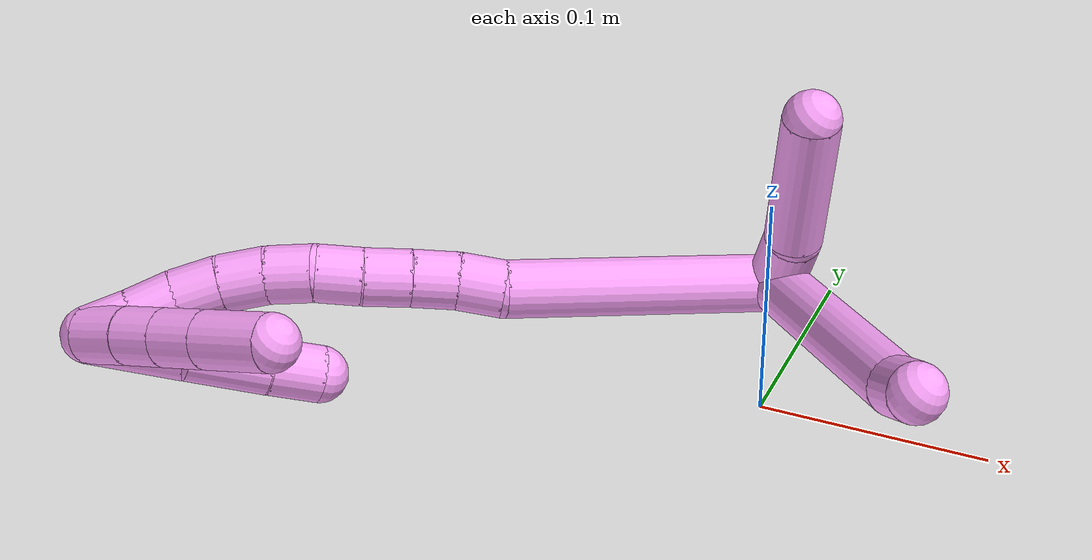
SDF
<sdf version="1.7">
 <world name="default">
  <model name="4">
   <static>0</static>
   <link name="4">
    <collision name="collision-cylinder-e_1_2_8">
     <pose>0.022906 -0.046785 0.037689 0.892658 0.364257 0.175809</pose>
     <geometry><cylinder><radius>0.0125</radius><length>0.128591</length></cylinder></geometry>
     <surface>
      <friction><ode><mu>1.16</mu><mu2>1.16</mu2><slip1>0</slip1><slip2>0</slip2></ode></friction>
      <contact><ode><kp>1e+06</kp><kd>1</kd><max_vel>0</max_vel><min_depth>0.001</min_depth></ode></contact>
     </surface>
    </collision>
    <visual name="visual-cylinder-e_1_2_8">
     <pose>0.022906 -0.046785 0.037689 0.892658 0.364257 0.175809</pose>
     <geometry><cylinder><radius>0.0125</radius><length>0.128591</length></cylinder></geometry>
     <material><ambient>1 0.65098 0.996078 1</ambient></material>
    </visual>
    <collision name="collision-cylinder-e_2_8_6">
     <pose>0.047472 -0.100773 0.08312 0.749406 0.155744 0.061357</pose>
     <geometry><cylinder><radius>0.0125</radius><length>0.021409</length></cylinder></geometry>
     <surface>
      <friction><ode><mu>1.16</mu><mu2>1.16</mu2><slip1>0</slip1><slip2>0</slip2></ode></friction>
      <contact><ode><kp>1e+06</kp><kd>1</kd><max_vel>0</max_vel><min_depth>0.001</min_depth></ode></contact>
     </surface>
    </collision>
    <visual name="visual-cylinder-e_2_8_6">
     <pose>0.047472 -0.100773 0.08312 0.749406 0.155744 0.061357</pose>
     <geometry><cylinder><radius>0.0125</radius><length>0.021409</length></cylinder></geometry>
     <material><ambient>1 0.65098 0.996078 1</ambient></material>
    </visual>
    <collision name="collision-cylinder-e_1_2_9">
     <pose>-0.005204 -0.004844 0.016324 0.288472 -0.296605 -0.043392</pose>
     <geometry><cylinder><radius>0.0125</radius><length>0.035611</length></cylinder></geometry>
     <surface>
      <friction><ode><mu>1.16</mu><mu2>1.16</mu2><slip1>0</slip1><slip2>0</slip2></ode></friction>
      <contact><ode><kp>1e+06</kp><kd>1</kd><max_vel>0</max_vel><min_depth>0.001</min_depth></ode></contact>
     </surface>
    </collision>
    <visual name="visual-cylinder-e_1_2_9">
     <pose>-0.005204 -0.004844 0.016324 0.288472 -0.296605 -0.043392</pose>
     <geometry><cylinder><radius>0.0125</radius><length>0.035611</length></cylinder></geometry>
     <material><ambient>1 0.65098 0.996078 1</ambient></material>
    </visual>
    <collision name="collision-cylinder-e_2_9_5">
     <pose>-0.025876 -0.012323 0.060761 0.09344 -0.501176 -0.023934</pose>
     <geometry><cylinder><radius>0.0125</radius><length>0.064389</length></cylinder></geometry>
     <surface>
      <friction><ode><mu>1.16</mu><mu2>1.16</mu2><slip1>0</slip1><slip2>0</slip2></ode></friction>
      <contact><ode><kp>1e+06</kp><kd>1</kd><max_vel>0</max_vel><min_depth>0.001</min_depth></ode></contact>
     </surface>
    </collision>
    <visual name="visual-cylinder-e_2_9_5">
     <pose>-0.025876 -0.012323 0.060761 0.09344 -0.501176 -0.023934</pose>
     <geometry><cylinder><radius>0.0125</radius><length>0.064389</length></cylinder></geometry>
     <material><ambient>1 0.65098 0.996078 1</ambient></material>
    </visual>
    <collision name="collision-cylinder-e_1_2_10">
     <pose>-0.044376 -0.032444 -0.023184 2.19125 -0.838758 -1.42805</pose>
     <geometry><cylinder><radius>0.0125</radius><length>0.11932</length></cylinder></geometry>
     <surface>
      <friction><ode><mu>1.16</mu><mu2>1.16</mu2><slip1>0</slip1><slip2>0</slip2></ode></friction>
      <contact><ode><kp>1e+06</kp><kd>1</kd><max_vel>0</max_vel><min_depth>0.001</min_depth></ode></contact>
     </surface>
    </collision>
    <visual name="visual-cylinder-e_1_2_10">
     <pose>-0.044376 -0.032444 -0.023184 2.19125 -0.838758 -1.42805</pose>
     <geometry><cylinder><radius>0.0125</radius><length>0.11932</length></cylinder></geometry>
     <material><ambient>1 0.65098 0.996078 1</ambient></material>
    </visual>
    <collision name="collision-cylinder-e_2_10_11">
     <pose>-0.097457 -0.068246 -0.050169 2.41777 -1.04325 -1.97661</pose>
     <geometry><cylinder><radius>0.0125</radius><length>0.020151</length></cylinder></geometry>
     <surface>
      <friction><ode><mu>1.16</mu><mu2>1.16</mu2><slip1>0</slip1><slip2>0</slip2></ode></friction>
      <contact><ode><kp>1e+06</kp><kd>1</kd><max_vel>0</max_vel><min_depth>0.001</min_depth></ode></contact>
     </surface>
    </collision>
    <visual name="visual-cylinder-e_2_10_11">
     <pose>-0.097457 -0.068246 -0.050169 2.41777 -1.04325 -1.97661</pose>
     <geometry><cylinder><radius>0.0125</radius><length>0.020151</length></cylinder></geometry>
     <material><ambient>1 0.65098 0.996078 1</ambient></material>
    </visual>
    <collision name="collision-cylinder-e_3_11_12">
     <pose>-0.114141 -0.076309 -0.057753 2.24825 -0.923037 -1.60846</pose>
     <geometry><cylinder><radius>0.0125</radius><length>0.020009</length></cylinder></geometry>
     <surface>
      <friction><ode><mu>1.16</mu><mu2>1.16</mu2><slip1>0</slip1><slip2>0</slip2></ode></friction>
      <contact><ode><kp>1e+06</kp><kd>1</kd><max_vel>0</max_vel><min_depth>0.001</min_depth></ode></contact>
     </surface>
    </collision>
    <visual name="visual-cylinder-e_3_11_12">
     <pose>-0.114141 -0.076309 -0.057753 2.24825 -0.923037 -1.60846</pose>
     <geometry><cylinder><radius>0.0125</radius><length>0.020009</length></cylinder></geometry>
     <material><ambient>1 0.65098 0.996078 1</ambient></material>
    </visual>
    <collision name="collision-cylinder-e_4_12_13">
     <pose>-0.130096 -0.085849 -0.065724 2.28431 -0.894886 -1.61973</pose>
     <geometry><cylinder><radius>0.0125</radius><length>0.020449</length></cylinder></geometry>
     <surface>
      <friction><ode><mu>1.16</mu><mu2>1.16</mu2><slip1>0</slip1><slip2>0</slip2></ode></friction>
      <contact><ode><kp>1e+06</kp><kd>1</kd><max_vel>0</max_vel><min_depth>0.001</min_depth></ode></contact>
     </surface>
    </collision>
    <visual name="visual-cylinder-e_4_12_13">
     <pose>-0.130096 -0.085849 -0.065724 2.28431 -0.894886 -1.61973</pose>
     <geometry><cylinder><radius>0.0125</radius><length>0.020449</length></cylinder></geometry>
     <material><ambient>1 0.65098 0.996078 1</ambient></material>
    </visual>
    <collision name="collision-cylinder-e_5_13_14">
     <pose>-0.146197 -0.09478 -0.074093 2.36686 -0.946492 -1.79609</pose>
     <geometry><cylinder><radius>0.0125</radius><length>0.020028</length></cylinder></geometry>
     <surface>
      <friction><ode><mu>1.16</mu><mu2>1.16</mu2><slip1>0</slip1><slip2>0</slip2></ode></friction>
      <contact><ode><kp>1e+06</kp><kd>1</kd><max_vel>0</max_vel><min_depth>0.001</min_depth></ode></contact>
     </surface>
    </collision>
    <visual name="visual-cylinder-e_5_13_14">
     <pose>-0.146197 -0.09478 -0.074093 2.36686 -0.946492 -1.79609</pose>
     <geometry><cylinder><radius>0.0125</radius><length>0.020028</length></cylinder></geometry>
     <material><ambient>1 0.65098 0.996078 1</ambient></material>
    </visual>
    <collision name="collision-cylinder-e_6_14_15">
     <pose>-0.161548 -0.102219 -0.084337 2.63732 -0.806807 -2.05547</pose>
     <geometry><cylinder><radius>0.0125</radius><length>0.020013</length></cylinder></geometry>
     <surface>
      <friction><ode><mu>1.16</mu><mu2>1.16</mu2><slip1>0</slip1><slip2>0</slip2></ode></friction>
      <contact><ode><kp>1e+06</kp><kd>1</kd><max_vel>0</max_vel><min_depth>0.001</min_depth></ode></contact>
     </surface>
    </collision>
    <visual name="visual-cylinder-e_6_14_15">
     <pose>-0.161548 -0.102219 -0.084337 2.63732 -0.806807 -2.05547</pose>
     <geometry><cylinder><radius>0.0125</radius><length>0.020013</length></cylinder></geometry>
     <material><ambient>1 0.65098 0.996078 1</ambient></material>
    </visual>
    <collision name="collision-cylinder-e_7_15_16">
     <pose>-0.175009 -0.109935 -0.096889 2.54895 -0.672757 -1.70603</pose>
     <geometry><cylinder><radius>0.0125</radius><length>0.020013</length></cylinder></geometry>
     <surface>
      <friction><ode><mu>1.16</mu><mu2>1.16</mu2><slip1>0</slip1><slip2>0</slip2></ode></friction>
      <contact><ode><kp>1e+06</kp><kd>1</kd><max_vel>0</max_vel><min_depth>0.001</min_depth></ode></contact>
     </surface>
    </collision>
    <visual name="visual-cylinder-e_7_15_16">
     <pose>-0.175009 -0.109935 -0.096889 2.54895 -0.672757 -1.70603</pose>
     <geometry><cylinder><radius>0.0125</radius><length>0.020013</length></cylinder></geometry>
     <material><ambient>1 0.65098 0.996078 1</ambient></material>
    </visual>
    <collision name="collision-cylinder-e_8_16_17">
     <pose>-0.186491 -0.119408 -0.110205 2.49963 -0.551898 -1.41096</pose>
     <geometry><cylinder><radius>0.0125</radius><length>0.020012</length></cylinder></geometry>
     <surface>
      <friction><ode><mu>1.16</mu><mu2>1.16</mu2><slip1>0</slip1><slip2>0</slip2></ode></friction>
      <contact><ode><kp>1e+06</kp><kd>1</kd><max_vel>0</max_vel><min_depth>0.001</min_depth></ode></contact>
     </surface>
    </collision>
    <visual name="visual-cylinder-e_8_16_17">
     <pose>-0.186491 -0.119408 -0.110205 2.49963 -0.551898 -1.41096</pose>
     <geometry><cylinder><radius>0.0125</radius><length>0.020012</length></cylinder></geometry>
     <material><ambient>1 0.65098 0.996078 1</ambient></material>
    </visual>
    <collision name="collision-cylinder-e_9_17_18">
     <pose>-0.19604 -0.130785 -0.123518 2.37296 -0.444808 -1.01971</pose>
     <geometry><cylinder><radius>0.0125</radius><length>0.02</length></cylinder></geometry>
     <surface>
      <friction><ode><mu>1.16</mu><mu2>1.16</mu2><slip1>0</slip1><slip2>0</slip2></ode></friction>
      <contact><ode><kp>1e+06</kp><kd>1</kd><max_vel>0</max_vel><min_depth>0.001</min_depth></ode></contact>
     </surface>
    </collision>
    <visual name="visual-cylinder-e_9_17_18">
     <pose>-0.19604 -0.130785 -0.123518 2.37296 -0.444808 -1.01971</pose>
     <geometry><cylinder><radius>0.0125</radius><length>0.02</length></cylinder></geometry>
     <material><ambient>1 0.65098 0.996078 1</ambient></material>
    </visual>
    <collision name="collision-cylinder-e_10_18_1">
     <pose>-0.205104 -0.143506 -0.135994 2.31929 -0.496133 -1.05256</pose>
     <geometry><cylinder><radius>0.0125</radius><length>0.020005</length></cylinder></geometry>
     <surface>
      <friction><ode><mu>1.16</mu><mu2>1.16</mu2><slip1>0</slip1><slip2>0</slip2></ode></friction>
      <contact><ode><kp>1e+06</kp><kd>1</kd><max_vel>0</max_vel><min_depth>0.001</min_depth></ode></contact>
     </surface>
    </collision>
    <visual name="visual-cylinder-e_10_18_1">
     <pose>-0.205104 -0.143506 -0.135994 2.31929 -0.496133 -1.05256</pose>
     <geometry><cylinder><radius>0.0125</radius><length>0.020005</length></cylinder></geometry>
     <material><ambient>1 0.65098 0.996078 1</ambient></material>
    </visual>
    <collision name="collision-cylinder-e_1_1_19">
     <pose>-0.191766 -0.143454 -0.133613 -0.660239 1.04127 -0.38802</pose>
     <geometry><cylinder><radius>0.0125</radius><length>0.041944</length></cylinder></geometry>
     <surface>
      <friction><ode><mu>1.16</mu><mu2>1.16</mu2><slip1>0</slip1><slip2>0</slip2></ode></friction>
      <contact><ode><kp>1e+06</kp><kd>1</kd><max_vel>0</max_vel><min_depth>0.001</min_depth></ode></contact>
     </surface>
    </collision>
    <visual name="visual-cylinder-e_1_1_19">
     <pose>-0.191766 -0.143454 -0.133613 -0.660239 1.04127 -0.38802</pose>
     <geometry><cylinder><radius>0.0125</radius><length>0.041944</length></cylinder></geometry>
     <material><ambient>1 0.65098 0.996078 1</ambient></material>
    </visual>
    <collision name="collision-cylinder-e_2_19_20">
     <pose>-0.15856 -0.12834 -0.121713 -1.18175 1.01832 -0.716652</pose>
     <geometry><cylinder><radius>0.0125</radius><length>0.035491</length></cylinder></geometry>
     <surface>
      <friction><ode><mu>1.16</mu><mu2>1.16</mu2><slip1>0</slip1><slip2>0</slip2></ode></friction>
      <contact><ode><kp>1e+06</kp><kd>1</kd><max_vel>0</max_vel><min_depth>0.001</min_depth></ode></contact>
     </surface>
    </collision>
    <visual name="visual-cylinder-e_2_19_20">
     <pose>-0.15856 -0.12834 -0.121713 -1.18175 1.01832 -0.716652</pose>
     <geometry><cylinder><radius>0.0125</radius><length>0.035491</length></cylinder></geometry>
     <material><ambient>1 0.65098 0.996078 1</ambient></material>
    </visual>
    <collision name="collision-cylinder-e_3_20_4">
     <pose>-0.134077 -0.113747 -0.116276 -1.26222 0.98133 -0.744467</pose>
     <geometry><cylinder><radius>0.0125</radius><length>0.022565</length></cylinder></geometry>
     <surface>
      <friction><ode><mu>1.16</mu><mu2>1.16</mu2><slip1>0</slip1><slip2>0</slip2></ode></friction>
      <contact><ode><kp>1e+06</kp><kd>1</kd><max_vel>0</max_vel><min_depth>0.001</min_depth></ode></contact>
     </surface>
    </collision>
    <visual name="visual-cylinder-e_3_20_4">
     <pose>-0.134077 -0.113747 -0.116276 -1.26222 0.98133 -0.744467</pose>
     <geometry><cylinder><radius>0.0125</radius><length>0.022565</length></cylinder></geometry>
     <material><ambient>1 0.65098 0.996078 1</ambient></material>
    </visual>
    <collision name="collision-cylinder-e_1_1_21">
     <pose>-0.203208 -0.151207 -0.13279 0.135851 0.6225 0.043765</pose>
     <geometry><cylinder><radius>0.0125</radius><length>0.022834</length></cylinder></geometry>
     <surface>
      <friction><ode><mu>1.16</mu><mu2>1.16</mu2><slip1>0</slip1><slip2>0</slip2></ode></friction>
      <contact><ode><kp>1e+06</kp><kd>1</kd><max_vel>0</max_vel><min_depth>0.001</min_depth></ode></contact>
     </surface>
    </collision>
    <visual name="visual-cylinder-e_1_1_21">
     <pose>-0.203208 -0.151207 -0.13279 0.135851 0.6225 0.043765</pose>
     <geometry><cylinder><radius>0.0125</radius><length>0.022834</length></cylinder></geometry>
     <material><ambient>1 0.65098 0.996078 1</ambient></material>
    </visual>
    <collision name="collision-cylinder-e_2_21_22">
     <pose>-0.190205 -0.153439 -0.115468 0.119342 0.659235 0.040869</pose>
     <geometry><cylinder><radius>0.0125</radius><length>0.020723</length></cylinder></geometry>
     <surface>
      <friction><ode><mu>1.16</mu><mu2>1.16</mu2><slip1>0</slip1><slip2>0</slip2></ode></friction>
      <contact><ode><kp>1e+06</kp><kd>1</kd><max_vel>0</max_vel><min_depth>0.001</min_depth></ode></contact>
     </surface>
    </collision>
    <visual name="visual-cylinder-e_2_21_22">
     <pose>-0.190205 -0.153439 -0.115468 0.119342 0.659235 0.040869</pose>
     <geometry><cylinder><radius>0.0125</radius><length>0.020723</length></cylinder></geometry>
     <material><ambient>1 0.65098 0.996078 1</ambient></material>
    </visual>
    <collision name="collision-cylinder-e_3_22_23">
     <pose>-0.177086 -0.155539 -0.09853 0.127126 0.651693 0.043006</pose>
     <geometry><cylinder><radius>0.0125</radius><length>0.022333</length></cylinder></geometry>
     <surface>
      <friction><ode><mu>1.16</mu><mu2>1.16</mu2><slip1>0</slip1><slip2>0</slip2></ode></friction>
      <contact><ode><kp>1e+06</kp><kd>1</kd><max_vel>0</max_vel><min_depth>0.001</min_depth></ode></contact>
     </surface>
    </collision>
    <visual name="visual-cylinder-e_3_22_23">
     <pose>-0.177086 -0.155539 -0.09853 0.127126 0.651693 0.043006</pose>
     <geometry><cylinder><radius>0.0125</radius><length>0.022333</length></cylinder></geometry>
     <material><ambient>1 0.65098 0.996078 1</ambient></material>
    </visual>
    <collision name="collision-cylinder-e_4_23_3">
     <pose>-0.159983 -0.158397 -0.076263 0.128015 0.6506 0.043229</pose>
     <geometry><cylinder><radius>0.0125</radius><length>0.034111</length></cylinder></geometry>
     <surface>
      <friction><ode><mu>1.16</mu><mu2>1.16</mu2><slip1>0</slip1><slip2>0</slip2></ode></friction>
      <contact><ode><kp>1e+06</kp><kd>1</kd><max_vel>0</max_vel><min_depth>0.001</min_depth></ode></contact>
     </surface>
    </collision>
    <visual name="visual-cylinder-e_4_23_3">
     <pose>-0.159983 -0.158397 -0.076263 0.128015 0.6506 0.043229</pose>
     <geometry><cylinder><radius>0.0125</radius><length>0.034111</length></cylinder></geometry>
     <material><ambient>1 0.65098 0.996078 1</ambient></material>
    </visual>
    <collision name="collision-sphere-3">
     <pose>-0.149654 -0.16013 -0.062803 0 -0 0</pose>
     <geometry><sphere><radius>0.0125</radius></sphere></geometry>
     <surface>
      <friction><ode><mu>1.16</mu><mu2>1.16</mu2><slip1>0</slip1><slip2>0</slip2></ode></friction>
      <contact><ode><kp>1e+06</kp><kd>1</kd><max_vel>0</max_vel><min_depth>0.001</min_depth></ode></contact>
     </surface>
    </collision>
    <visual name="visual-sphere-3">
     <pose>-0.149654 -0.16013 -0.062803 0 -0 0</pose>
     <geometry><sphere><radius>0.0125</radius></sphere></geometry>
     <material><ambient>1 0.65098 0.996078 1</ambient></material>
    </visual>
    <collision name="collision-sphere-23">
     <pose>-0.170313 -0.156665 -0.089724 0 -0 0</pose>
     <geometry><sphere><radius>0.0125</radius></sphere></geometry>
     <surface>
      <friction><ode><mu>1.16</mu><mu2>1.16</mu2><slip1>0</slip1><slip2>0</slip2></ode></friction>
      <contact><ode><kp>1e+06</kp><kd>1</kd><max_vel>0</max_vel><min_depth>0.001</min_depth></ode></contact>
     </surface>
    </collision>
    <visual name="visual-sphere-23">
     <pose>-0.170313 -0.156665 -0.089724 0 -0 0</pose>
     <geometry><sphere><radius>0.0125</radius></sphere></geometry>
     <material><ambient>1 0.65098 0.996078 1</ambient></material>
    </visual>
    <collision name="collision-sphere-22">
     <pose>-0.183859 -0.154414 -0.107336 0 -0 0</pose>
     <geometry><sphere><radius>0.0125</radius></sphere></geometry>
     <surface>
      <friction><ode><mu>1.16</mu><mu2>1.16</mu2><slip1>0</slip1><slip2>0</slip2></ode></friction>
      <contact><ode><kp>1e+06</kp><kd>1</kd><max_vel>0</max_vel><min_depth>0.001</min_depth></ode></contact>
     </surface>
    </collision>
    <visual name="visual-sphere-22">
     <pose>-0.183859 -0.154414 -0.107336 0 -0 0</pose>
     <geometry><sphere><radius>0.0125</radius></sphere></geometry>
     <material><ambient>1 0.65098 0.996078 1</ambient></material>
    </visual>
    <collision name="collision-sphere-21">
     <pose>-0.196551 -0.152463 -0.1236 0 -0 0</pose>
     <geometry><sphere><radius>0.0125</radius></sphere></geometry>
     <surface>
      <friction><ode><mu>1.16</mu><mu2>1.16</mu2><slip1>0</slip1><slip2>0</slip2></ode></friction>
      <contact><ode><kp>1e+06</kp><kd>1</kd><max_vel>0</max_vel><min_depth>0.001</min_depth></ode></contact>
     </surface>
    </collision>
    <visual name="visual-sphere-21">
     <pose>-0.196551 -0.152463 -0.1236 0 -0 0</pose>
     <geometry><sphere><radius>0.0125</radius></sphere></geometry>
     <material><ambient>1 0.65098 0.996078 1</ambient></material>
    </visual>
    <collision name="collision-sphere-4">
     <pose>-0.124698 -0.107771 -0.114371 0 -0 0</pose>
     <geometry><sphere><radius>0.0125</radius></sphere></geometry>
     <surface>
      <friction><ode><mu>1.16</mu><mu2>1.16</mu2><slip1>0</slip1><slip2>0</slip2></ode></friction>
      <contact><ode><kp>1e+06</kp><kd>1</kd><max_vel>0</max_vel><min_depth>0.001</min_depth></ode></contact>
     </surface>
    </collision>
    <visual name="visual-sphere-4">
     <pose>-0.124698 -0.107771 -0.114371 0 -0 0</pose>
     <geometry><sphere><radius>0.0125</radius></sphere></geometry>
     <material><ambient>1 0.65098 0.996078 1</ambient></material>
    </visual>
    <collision name="collision-sphere-20">
     <pose>-0.143455 -0.119723 -0.118181 0 -0 0</pose>
     <geometry><sphere><radius>0.0125</radius></sphere></geometry>
     <surface>
      <friction><ode><mu>1.16</mu><mu2>1.16</mu2><slip1>0</slip1><slip2>0</slip2></ode></friction>
      <contact><ode><kp>1e+06</kp><kd>1</kd><max_vel>0</max_vel><min_depth>0.001</min_depth></ode></contact>
     </surface>
    </collision>
    <visual name="visual-sphere-20">
     <pose>-0.143455 -0.119723 -0.118181 0 -0 0</pose>
     <geometry><sphere><radius>0.0125</radius></sphere></geometry>
     <material><ambient>1 0.65098 0.996078 1</ambient></material>
    </visual>
    <collision name="collision-sphere-10">
     <pose>-0.088752 -0.064887 -0.046368 0 -0 0</pose>
     <geometry><sphere><radius>0.0125</radius></sphere></geometry>
     <surface>
      <friction><ode><mu>1.16</mu><mu2>1.16</mu2><slip1>0</slip1><slip2>0</slip2></ode></friction>
      <contact><ode><kp>1e+06</kp><kd>1</kd><max_vel>0</max_vel><min_depth>0.001</min_depth></ode></contact>
     </surface>
    </collision>
    <visual name="visual-sphere-10">
     <pose>-0.088752 -0.064887 -0.046368 0 -0 0</pose>
     <geometry><sphere><radius>0.0125</radius></sphere></geometry>
     <material><ambient>1 0.65098 0.996078 1</ambient></material>
    </visual>
    <collision name="collision-sphere-5">
     <pose>-0.041344 -0.014957 0.088873 0 -0 0</pose>
     <geometry><sphere><radius>0.0125</radius></sphere></geometry>
     <surface>
      <friction><ode><mu>1.16</mu><mu2>1.16</mu2><slip1>0</slip1><slip2>0</slip2></ode></friction>
      <contact><ode><kp>1e+06</kp><kd>1</kd><max_vel>0</max_vel><min_depth>0.001</min_depth></ode></contact>
     </surface>
    </collision>
    <visual name="visual-sphere-5">
     <pose>-0.041344 -0.014957 0.088873 0 -0 0</pose>
     <geometry><sphere><radius>0.0125</radius></sphere></geometry>
     <material><ambient>1 0.65098 0.996078 1</ambient></material>
    </visual>
    <collision name="collision-sphere-6">
     <pose>0.049132 -0.107976 0.090862 0 -0 0</pose>
     <geometry><sphere><radius>0.0125</radius></sphere></geometry>
     <surface>
      <friction><ode><mu>1.16</mu><mu2>1.16</mu2><slip1>0</slip1><slip2>0</slip2></ode></friction>
      <contact><ode><kp>1e+06</kp><kd>1</kd><max_vel>0</max_vel><min_depth>0.001</min_depth></ode></contact>
     </surface>
    </collision>
    <visual name="visual-sphere-6">
     <pose>0.049132 -0.107976 0.090862 0 -0 0</pose>
     <geometry><sphere><radius>0.0125</radius></sphere></geometry>
     <material><ambient>1 0.65098 0.996078 1</ambient></material>
    </visual>
    <collision name="collision-sphere-9">
     <pose>-0.010408 -0.009689 0.032649 0 -0 0</pose>
     <geometry><sphere><radius>0.0125</radius></sphere></geometry>
     <surface>
      <friction><ode><mu>1.16</mu><mu2>1.16</mu2><slip1>0</slip1><slip2>0</slip2></ode></friction>
      <contact><ode><kp>1e+06</kp><kd>1</kd><max_vel>0</max_vel><min_depth>0.001</min_depth></ode></contact>
     </surface>
    </collision>
    <visual name="visual-sphere-9">
     <pose>-0.010408 -0.009689 0.032649 0 -0 0</pose>
     <geometry><sphere><radius>0.0125</radius></sphere></geometry>
     <material><ambient>1 0.65098 0.996078 1</ambient></material>
    </visual>
    <collision name="collision-sphere-2">
     <geometry><sphere><radius>0.0125</radius></sphere></geometry>
     <surface>
      <friction><ode><mu>1.16</mu><mu2>1.16</mu2><slip1>0</slip1><slip2>0</slip2></ode></friction>
      <contact><ode><kp>1e+06</kp><kd>1</kd><max_vel>0</max_vel><min_depth>0.001</min_depth></ode></contact>
     </surface>
    </collision>
    <visual name="visual-sphere-2">
     <geometry><sphere><radius>0.0125</radius></sphere></geometry>
     <material><ambient>1 0.65098 0.996078 1</ambient></material>
    </visual>
    <collision name="collision-sphere-19">
     <pose>-0.173666 -0.136957 -0.125246 0 -0 0</pose>
     <geometry><sphere><radius>0.0125</radius></sphere></geometry>
     <surface>
      <friction><ode><mu>1.16</mu><mu2>1.16</mu2><slip1>0</slip1><slip2>0</slip2></ode></friction>
      <contact><ode><kp>1e+06</kp><kd>1</kd><max_vel>0</max_vel><min_depth>0.001</min_depth></ode></contact>
     </surface>
    </collision>
    <visual name="visual-sphere-19">
     <pose>-0.173666 -0.136957 -0.125246 0 -0 0</pose>
     <geometry><sphere><radius>0.0125</radius></sphere></geometry>
     <material><ambient>1 0.65098 0.996078 1</ambient></material>
    </visual>
    <collision name="collision-sphere-8">
     <pose>0.045811 -0.093569 0.075378 0 -0 0</pose>
     <geometry><sphere><radius>0.0125</radius></sphere></geometry>
     <surface>
      <friction><ode><mu>1.16</mu><mu2>1.16</mu2><slip1>0</slip1><slip2>0</slip2></ode></friction>
      <contact><ode><kp>1e+06</kp><kd>1</kd><max_vel>0</max_vel><min_depth>0.001</min_depth></ode></contact>
     </surface>
    </collision>
    <visual name="visual-sphere-8">
     <pose>0.045811 -0.093569 0.075378 0 -0 0</pose>
     <geometry><sphere><radius>0.0125</radius></sphere></geometry>
     <material><ambient>1 0.65098 0.996078 1</ambient></material>
    </visual>
    <collision name="collision-sphere-11">
     <pose>-0.106163 -0.071605 -0.053969 0 -0 0</pose>
     <geometry><sphere><radius>0.0125</radius></sphere></geometry>
     <surface>
      <friction><ode><mu>1.16</mu><mu2>1.16</mu2><slip1>0</slip1><slip2>0</slip2></ode></friction>
      <contact><ode><kp>1e+06</kp><kd>1</kd><max_vel>0</max_vel><min_depth>0.001</min_depth></ode></contact>
     </surface>
    </collision>
    <visual name="visual-sphere-11">
     <pose>-0.106163 -0.071605 -0.053969 0 -0 0</pose>
     <geometry><sphere><radius>0.0125</radius></sphere></geometry>
     <material><ambient>1 0.65098 0.996078 1</ambient></material>
    </visual>
    <collision name="collision-sphere-12">
     <pose>-0.122119 -0.081013 -0.061537 0 -0 0</pose>
     <geometry><sphere><radius>0.0125</radius></sphere></geometry>
     <surface>
      <friction><ode><mu>1.16</mu><mu2>1.16</mu2><slip1>0</slip1><slip2>0</slip2></ode></friction>
      <contact><ode><kp>1e+06</kp><kd>1</kd><max_vel>0</max_vel><min_depth>0.001</min_depth></ode></contact>
     </surface>
    </collision>
    <visual name="visual-sphere-12">
     <pose>-0.122119 -0.081013 -0.061537 0 -0 0</pose>
     <geometry><sphere><radius>0.0125</radius></sphere></geometry>
     <material><ambient>1 0.65098 0.996078 1</ambient></material>
    </visual>
    <collision name="collision-sphere-13">
     <pose>-0.138072 -0.090685 -0.06991 0 -0 0</pose>
     <geometry><sphere><radius>0.0125</radius></sphere></geometry>
     <surface>
      <friction><ode><mu>1.16</mu><mu2>1.16</mu2><slip1>0</slip1><slip2>0</slip2></ode></friction>
      <contact><ode><kp>1e+06</kp><kd>1</kd><max_vel>0</max_vel><min_depth>0.001</min_depth></ode></contact>
     </surface>
    </collision>
    <visual name="visual-sphere-13">
     <pose>-0.138072 -0.090685 -0.06991 0 -0 0</pose>
     <geometry><sphere><radius>0.0125</radius></sphere></geometry>
     <material><ambient>1 0.65098 0.996078 1</ambient></material>
    </visual>
    <collision name="collision-sphere-14">
     <pose>-0.154323 -0.098874 -0.078276 0 -0 0</pose>
     <geometry><sphere><radius>0.0125</radius></sphere></geometry>
     <surface>
      <friction><ode><mu>1.16</mu><mu2>1.16</mu2><slip1>0</slip1><slip2>0</slip2></ode></friction>
      <contact><ode><kp>1e+06</kp><kd>1</kd><max_vel>0</max_vel><min_depth>0.001</min_depth></ode></contact>
     </surface>
    </collision>
    <visual name="visual-sphere-14">
     <pose>-0.154323 -0.098874 -0.078276 0 -0 0</pose>
     <geometry><sphere><radius>0.0125</radius></sphere></geometry>
     <material><ambient>1 0.65098 0.996078 1</ambient></material>
    </visual>
    <collision name="collision-sphere-15">
     <pose>-0.168774 -0.105564 -0.090398 0 -0 0</pose>
     <geometry><sphere><radius>0.0125</radius></sphere></geometry>
     <surface>
      <friction><ode><mu>1.16</mu><mu2>1.16</mu2><slip1>0</slip1><slip2>0</slip2></ode></friction>
      <contact><ode><kp>1e+06</kp><kd>1</kd><max_vel>0</max_vel><min_depth>0.001</min_depth></ode></contact>
     </surface>
    </collision>
    <visual name="visual-sphere-15">
     <pose>-0.168774 -0.105564 -0.090398 0 -0 0</pose>
     <geometry><sphere><radius>0.0125</radius></sphere></geometry>
     <material><ambient>1 0.65098 0.996078 1</ambient></material>
    </visual>
    <collision name="collision-sphere-16">
     <pose>-0.181244 -0.114307 -0.103381 0 -0 0</pose>
     <geometry><sphere><radius>0.0125</radius></sphere></geometry>
     <surface>
      <friction><ode><mu>1.16</mu><mu2>1.16</mu2><slip1>0</slip1><slip2>0</slip2></ode></friction>
      <contact><ode><kp>1e+06</kp><kd>1</kd><max_vel>0</max_vel><min_depth>0.001</min_depth></ode></contact>
     </surface>
    </collision>
    <visual name="visual-sphere-16">
     <pose>-0.181244 -0.114307 -0.103381 0 -0 0</pose>
     <geometry><sphere><radius>0.0125</radius></sphere></geometry>
     <material><ambient>1 0.65098 0.996078 1</ambient></material>
    </visual>
    <collision name="collision-sphere-17">
     <pose>-0.191737 -0.12451 -0.117029 0 -0 0</pose>
     <geometry><sphere><radius>0.0125</radius></sphere></geometry>
     <surface>
      <friction><ode><mu>1.16</mu><mu2>1.16</mu2><slip1>0</slip1><slip2>0</slip2></ode></friction>
      <contact><ode><kp>1e+06</kp><kd>1</kd><max_vel>0</max_vel><min_depth>0.001</min_depth></ode></contact>
     </surface>
    </collision>
    <visual name="visual-sphere-17">
     <pose>-0.191737 -0.12451 -0.117029 0 -0 0</pose>
     <geometry><sphere><radius>0.0125</radius></sphere></geometry>
     <material><ambient>1 0.65098 0.996078 1</ambient></material>
    </visual>
    <collision name="collision-sphere-18">
     <pose>-0.200343 -0.137061 -0.130008 0 -0 0</pose>
     <geometry><sphere><radius>0.0125</radius></sphere></geometry>
     <surface>
      <friction><ode><mu>1.16</mu><mu2>1.16</mu2><slip1>0</slip1><slip2>0</slip2></ode></friction>
      <contact><ode><kp>1e+06</kp><kd>1</kd><max_vel>0</max_vel><min_depth>0.001</min_depth></ode></contact>
     </surface>
    </collision>
    <visual name="visual-sphere-18">
     <pose>-0.200343 -0.137061 -0.130008 0 -0 0</pose>
     <geometry><sphere><radius>0.0125</radius></sphere></geometry>
     <material><ambient>1 0.65098 0.996078 1</ambient></material>
    </visual>
    <collision name="collision-sphere-1">
     <pose>-0.209865 -0.149951 -0.14198 0 -0 0</pose>
     <geometry><sphere><radius>0.0125</radius></sphere></geometry>
     <surface>
      <friction><ode><mu>1.16</mu><mu2>1.16</mu2><slip1>0</slip1><slip2>0</slip2></ode></friction>
      <contact><ode><kp>1e+06</kp><kd>1</kd><max_vel>0</max_vel><min_depth>0.001</min_depth></ode></contact>
     </surface>
    </collision>
    <visual name="visual-sphere-1">
     <pose>-0.209865 -0.149951 -0.14198 0 -0 0</pose>
     <geometry><sphere><radius>0.0125</radius></sphere></geometry>
     <material><ambient>1 0.65098 0.996078 1</ambient></material>
    </visual>
    <inertial>
     <pose>-0.088269 -0.080448 -0.040585 0 -0 0</pose>
     <mass>0.75</mass>
     <inertia>
      <ixx>0.00014</ixx>
      <ixy>0</ixy>
      <ixz>0</ixz>
      <iyy>0.000157</iyy>
      <iyz>0</iyz>
      <izz>0.000277</izz>
     </inertia>
    </inertial>
   </link>
   <pose>-0.008072 0.037668 0.039163 0.074269 0.620332 0.03542</pose>
  </model>
 </world>
</sdf>
